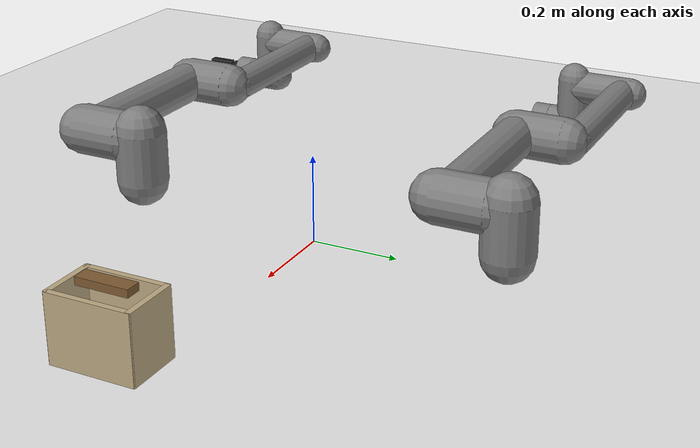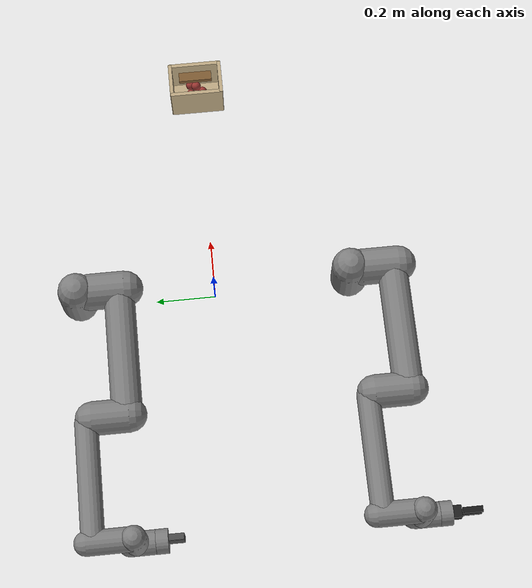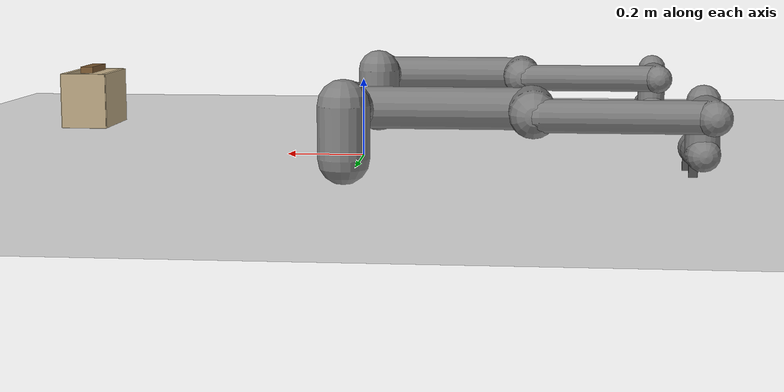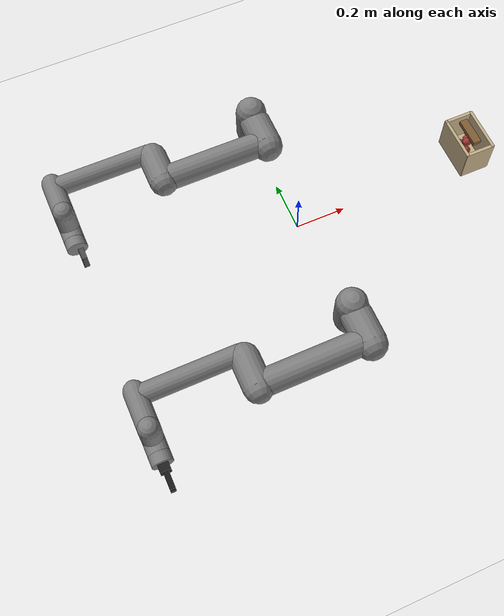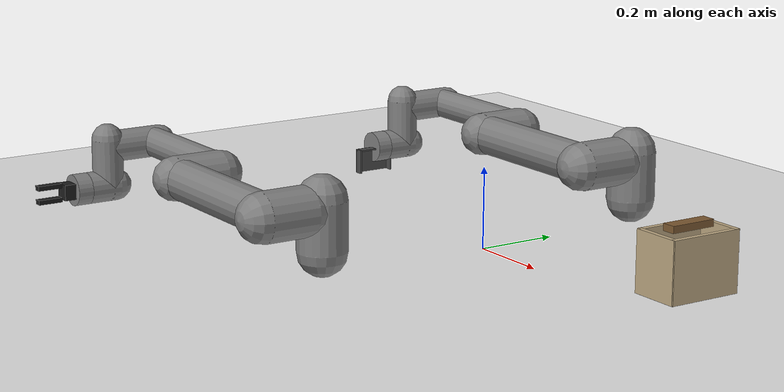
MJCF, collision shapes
<mujoco model="dual_ur5e_2f_scoop_sack_0330"><compiler angle="degree" meshdir="D:\Michael\2025\01.Research\01.Parceldetection\16.Pybullet\mujoco_menagerie\universal_robots_ur5e\assets" autolimits="true" inertiafromgeom="true" /><option integrator="implicitfast" timestep="0.002" gravity="0 0 -9.81" /><size memory="256M" nconmax="4000" /><statistic center="0.45 0 0.45" extent="1.4" /><visual><headlight diffuse="0.6 0.6 0.6" ambient="0.1 0.1 0.1" specular="0 0 0" /><rgba haze="0.15 0.25 0.35 1" /><global azimuth="120" elevation="-20" /></visual><asset><material class="ur5e" name="black" rgba="0.033 0.033 0.033 1" />
    <material class="ur5e" name="jointgray" rgba="0.278 0.278 0.278 1" />
    <material class="ur5e" name="linkgray" rgba="0.82 0.82 0.82 1" />
    <material class="ur5e" name="urblue" rgba="0.49 0.678 0.8 1" />

    <mesh file="base_0.obj" />
    <mesh file="base_1.obj" />
    <mesh file="shoulder_0.obj" />
    <mesh file="shoulder_1.obj" />
    <mesh file="shoulder_2.obj" />
    <mesh file="upperarm_0.obj" />
    <mesh file="upperarm_1.obj" />
    <mesh file="upperarm_2.obj" />
    <mesh file="upperarm_3.obj" />
    <mesh file="forearm_0.obj" />
    <mesh file="forearm_1.obj" />
    <mesh file="forearm_2.obj" />
    <mesh file="forearm_3.obj" />
    <mesh file="wrist1_0.obj" />
    <mesh file="wrist1_1.obj" />
    <mesh file="wrist1_2.obj" />
    <mesh file="wrist2_0.obj" />
    <mesh file="wrist2_1.obj" />
    <mesh file="wrist2_2.obj" />
    <mesh file="wrist3.obj" />
  <mesh name="sack9_obj" file="D:\Michael\2025\01.Research\01.Parceldetection\16.Pybullet\bullet3-master (1)\bullet3-master\examples\pybullet\examples\DeformableTest\Sackcodex2\object\sack9.obj" scale="0.070 0.070 0.070" /></asset><default>
    <default class="ur5e">
      <material specular="0.5" shininess="0.25" />
      <joint axis="0 1 0" range="-360.000269 360.000269" armature="0.1" />
      <general gaintype="fixed" biastype="affine" ctrlrange="-359.995112 359.995112" gainprm="2000" biasprm="0 -2000 -400" forcerange="-150 150" />
      <default class="size3">
        <default class="size3_limited">
          <joint range="-179.994691 179.994691" />
          <general ctrlrange="-179.994691 179.994691" />
        </default>
      </default>
      <default class="size1">
        <general gainprm="500" biasprm="0 -500 -100" forcerange="-28 28" />
      </default>
      <default class="visual">
        <geom type="mesh" contype="0" conaffinity="0" group="2" />
      </default>
      <default class="collision">
        <geom type="capsule" group="3" />
        <default class="eef_collision">
          <geom type="cylinder" />
        </default>
      </default>
      <site size="0.001" rgba="0.5 0.5 0.5 0.3" group="4" />
    </default>
  </default>

  <worldbody><light name="main_light" pos="0 0 1.8" dir="0 0 -1" directional="true" /><geom name="floor" type="plane" size="0 0 0.05" rgba="0.92 0.92 0.92 1" /><camera name="overview" pos="1.7 0 1.0" xyaxes="0 1 0 -0.40 0 0.92" /><body name="left_base" quat="0 0 0 -1" childclass="ur5e" pos="0.000000 -0.450000 0.000000">
      <inertial mass="4.0" pos="0 0 0" diaginertia="0.00443333156 0.00443333156 0.0072" />
      <geom mesh="base_0" material="black" class="visual" />
      <geom mesh="base_1" material="jointgray" class="visual" />
      <body name="left_shoulder_link" pos="0 0 0.163">
        <inertial mass="3.7" pos="0 0 0" diaginertia="0.0102675 0.0102675 0.00666" />
        <joint name="left_shoulder_pan_joint" class="size3" axis="0 0 1" />
        <geom mesh="shoulder_0" material="urblue" class="visual" />
        <geom mesh="shoulder_1" material="black" class="visual" />
        <geom mesh="shoulder_2" material="jointgray" class="visual" />
        <geom class="collision" size="0.06 0.06" pos="0 0 -0.04" />
        <body name="left_upper_arm_link" pos="0 0.138 0" quat="1 0 1 0">
          <inertial mass="8.393" pos="0 0 0.2125" diaginertia="0.133886 0.133886 0.0151074" />
          <joint name="left_shoulder_lift_joint" class="size3" />
          <geom mesh="upperarm_0" material="linkgray" class="visual" />
          <geom mesh="upperarm_1" material="black" class="visual" />
          <geom mesh="upperarm_2" material="jointgray" class="visual" />
          <geom mesh="upperarm_3" material="urblue" class="visual" />
          <geom class="collision" pos="0 -0.04 0" quat="1 1 0 0" size="0.06 0.06" />
          <geom class="collision" size="0.05 0.2" pos="0 0 0.2" />
          <body name="left_forearm_link" pos="0 -0.131 0.425">
            <inertial mass="2.275" pos="0 0 0.196" diaginertia="0.0311796 0.0311796 0.004095" />
            <joint name="left_elbow_joint" class="size3_limited" />
            <geom mesh="forearm_0" material="urblue" class="visual" />
            <geom mesh="forearm_1" material="linkgray" class="visual" />
            <geom mesh="forearm_2" material="black" class="visual" />
            <geom mesh="forearm_3" material="jointgray" class="visual" />
            <geom class="collision" pos="0 0.08 0" quat="1 1 0 0" size="0.055 0.06" />
            <geom class="collision" size="0.038 0.19" pos="0 0 0.2" />
            <body name="left_wrist_1_link" pos="0 0 0.392" quat="1 0 1 0">
              <inertial mass="1.219" pos="0 0.127 0" diaginertia="0.0025599 0.0025599 0.0021942" />
              <joint name="left_wrist_1_joint" class="size1" />
              <geom mesh="wrist1_0" material="black" class="visual" />
              <geom mesh="wrist1_1" material="urblue" class="visual" />
              <geom mesh="wrist1_2" material="jointgray" class="visual" />
              <geom class="collision" pos="0 0.05 0" quat="1 1 0 0" size="0.04 0.07" />
              <body name="left_wrist_2_link" pos="0 0.127 0">
                <inertial mass="1.219" pos="0 0 0.1" diaginertia="0.0025599 0.0025599 0.0021942" />
                <joint name="left_wrist_2_joint" axis="0 0 1" class="size1" />
                <geom mesh="wrist2_0" material="black" class="visual" />
                <geom mesh="wrist2_1" material="urblue" class="visual" />
                <geom mesh="wrist2_2" material="jointgray" class="visual" />
                <geom class="collision" size="0.04 0.06" pos="0 0 0.04" />
                <geom class="collision" pos="0 0.02 0.1" quat="1 1 0 0" size="0.04 0.04" />
                <body name="left_wrist_3_link" pos="0 0 0.1">
                  <inertial mass="0.1889" pos="0 0.0771683 0" quat="1 0 0 1" diaginertia="0.000132134 9.90863e-05 9.90863e-05" />
                  <joint name="left_wrist_3_joint" class="size1" />
                  <geom material="linkgray" mesh="wrist3" class="visual" />
                  <geom class="eef_collision" pos="0 0.08 0" quat="1 1 0 0" size="0.04 0.02" />
                  <site name="left_attachment_site" pos="0 0.1 0" quat="-1 1 0 0" />
                <body name="left_gripper_base" pos="0 0.10 0" quat="-1 1 0 0">
          <geom type="box" size="0.020 0.020 0.030" rgba="0.12 0.12 0.12 1" />
          <body name="left_finger_l_body" pos="0 0 0.065">
            <joint name="left_finger_l" type="slide" axis="0 1 0" limited="true" range="0.012 0.040" damping="8" />
            <geom type="box" pos="0 0.018 0" size="0.010 0.006 0.032" rgba="0.10 0.10 0.10 1" friction="2.0 0.05 0.01" />
          </body>
          <body name="left_finger_r_body" pos="0 0 0.065">
            <joint name="left_finger_r" type="slide" axis="0 -1 0" limited="true" range="0.012 0.040" damping="8" />
            <geom type="box" pos="0 -0.018 0" size="0.010 0.006 0.032" rgba="0.10 0.10 0.10 1" friction="2.0 0.05 0.01" />
          </body>
          <site name="left_gripper_pinch" pos="0 0 0.065" size="0.006" rgba="1 0 0 1" />
        </body></body>
              </body>
            </body>
          </body>
        </body>
      </body>
    </body>
  <body name="right_base" quat="0 0 0 -1" childclass="ur5e" pos="0.000000 0.450000 0.000000">
      <inertial mass="4.0" pos="0 0 0" diaginertia="0.00443333156 0.00443333156 0.0072" />
      <geom mesh="base_0" material="black" class="visual" />
      <geom mesh="base_1" material="jointgray" class="visual" />
      <body name="right_shoulder_link" pos="0 0 0.163">
        <inertial mass="3.7" pos="0 0 0" diaginertia="0.0102675 0.0102675 0.00666" />
        <joint name="right_shoulder_pan_joint" class="size3" axis="0 0 1" />
        <geom mesh="shoulder_0" material="urblue" class="visual" />
        <geom mesh="shoulder_1" material="black" class="visual" />
        <geom mesh="shoulder_2" material="jointgray" class="visual" />
        <geom class="collision" size="0.06 0.06" pos="0 0 -0.04" />
        <body name="right_upper_arm_link" pos="0 0.138 0" quat="1 0 1 0">
          <inertial mass="8.393" pos="0 0 0.2125" diaginertia="0.133886 0.133886 0.0151074" />
          <joint name="right_shoulder_lift_joint" class="size3" />
          <geom mesh="upperarm_0" material="linkgray" class="visual" />
          <geom mesh="upperarm_1" material="black" class="visual" />
          <geom mesh="upperarm_2" material="jointgray" class="visual" />
          <geom mesh="upperarm_3" material="urblue" class="visual" />
          <geom class="collision" pos="0 -0.04 0" quat="1 1 0 0" size="0.06 0.06" />
          <geom class="collision" size="0.05 0.2" pos="0 0 0.2" />
          <body name="right_forearm_link" pos="0 -0.131 0.425">
            <inertial mass="2.275" pos="0 0 0.196" diaginertia="0.0311796 0.0311796 0.004095" />
            <joint name="right_elbow_joint" class="size3_limited" />
            <geom mesh="forearm_0" material="urblue" class="visual" />
            <geom mesh="forearm_1" material="linkgray" class="visual" />
            <geom mesh="forearm_2" material="black" class="visual" />
            <geom mesh="forearm_3" material="jointgray" class="visual" />
            <geom class="collision" pos="0 0.08 0" quat="1 1 0 0" size="0.055 0.06" />
            <geom class="collision" size="0.038 0.19" pos="0 0 0.2" />
            <body name="right_wrist_1_link" pos="0 0 0.392" quat="1 0 1 0">
              <inertial mass="1.219" pos="0 0.127 0" diaginertia="0.0025599 0.0025599 0.0021942" />
              <joint name="right_wrist_1_joint" class="size1" />
              <geom mesh="wrist1_0" material="black" class="visual" />
              <geom mesh="wrist1_1" material="urblue" class="visual" />
              <geom mesh="wrist1_2" material="jointgray" class="visual" />
              <geom class="collision" pos="0 0.05 0" quat="1 1 0 0" size="0.04 0.07" />
              <body name="right_wrist_2_link" pos="0 0.127 0">
                <inertial mass="1.219" pos="0 0 0.1" diaginertia="0.0025599 0.0025599 0.0021942" />
                <joint name="right_wrist_2_joint" axis="0 0 1" class="size1" />
                <geom mesh="wrist2_0" material="black" class="visual" />
                <geom mesh="wrist2_1" material="urblue" class="visual" />
                <geom mesh="wrist2_2" material="jointgray" class="visual" />
                <geom class="collision" size="0.04 0.06" pos="0 0 0.04" />
                <geom class="collision" pos="0 0.02 0.1" quat="1 1 0 0" size="0.04 0.04" />
                <body name="right_wrist_3_link" pos="0 0 0.1">
                  <inertial mass="0.1889" pos="0 0.0771683 0" quat="1 0 0 1" diaginertia="0.000132134 9.90863e-05 9.90863e-05" />
                  <joint name="right_wrist_3_joint" class="size1" />
                  <geom material="linkgray" mesh="wrist3" class="visual" />
                  <geom class="eef_collision" pos="0 0.08 0" quat="1 1 0 0" size="0.04 0.02" />
                  <site name="right_attachment_site" pos="0 0.1 0" quat="-1 1 0 0" />
                <body name="right_scoop_tool" pos="0 0.10 0.05" euler="-90 90 0">
          <geom type="box" pos="0 -0.020 0" size="0.050 0.070 0.001" mass="0.04" rgba="0.30 0.30 0.30 1" friction="1.6 0.05 0.01" />
          <geom type="box" pos="0.048 -0.020 0.011" size="0.002 0.070 0.010" mass="0.015" rgba="0.30 0.30 0.30 1" friction="1.6 0.05 0.01" />
          <geom type="box" pos="-0.048 -0.020 0.011" size="0.002 0.070 0.010" mass="0.015" rgba="0.30 0.30 0.30 1" friction="1.6 0.05 0.01" />
          <geom type="box" pos="0 0.048 0.011" size="0.050 0.002 0.010" mass="0.012" rgba="0.30 0.30 0.30 1" friction="1.6 0.05 0.01" />
          <geom type="box" pos="0 -0.1005 -0.001" euler="0.35 0 0" size="0.050 0.0105 0.001" mass="0.006" rgba="0.30 0.30 0.30 1" friction="1.6 0.05 0.01" />
          <site name="right_scoop_site" pos="0 -0.090 0.006" size="0.006" rgba="0 0 1 1" />
        </body></body>
              </body>
            </body>
          </body>
        </body>
      </body>
    </body>
  <body name="band" pos="0.720000 0.000000 0.223000">
          <freejoint name="band_free" />
          <geom name="grasp_band" type="box" size="0.016000 0.055000 0.008000" mass="0.10" rgba="0.50 0.36 0.20 1" friction="2.0 0.05 0.01" />
          <site name="handle_grasp_site" pos="0 0 0" size="0.008" rgba="1 0 0 1" />
        </body><body name="sack" pos="0.720000 0.000000 0.135000">
          <freejoint name="sack_free" />
          <geom name="sack_visual" type="mesh" mesh="sack9_obj" rgba="0.90 0.85 0.70 0.52" contype="0" conaffinity="0" />
          <geom name="sack_bottom" type="box" pos="0 0 -0.055" size="0.058 0.088 0.006" mass="0.16" rgba="0.75 0.67 0.52 0.35" friction="1.3 0.05 0.01" />
          <body name="sack_wall_l_body" pos="0 0.084 0.010">
            <joint name="sack_wall_l_slide" type="slide" axis="0 -1 0" limited="true" range="-0.018 0.010" damping="18" stiffness="900" armature="0.003" />
            <geom name="sack_wall_l" type="box" pos="0 0 0" size="0.058 0.006 0.070" mass="0.05" rgba="0.75 0.67 0.52 0.28" friction="1.3 0.05 0.01" />
          </body>
          <body name="sack_wall_r_body" pos="0 -0.084 0.010">
            <joint name="sack_wall_r_slide" type="slide" axis="0 1 0" limited="true" range="-0.018 0.010" damping="18" stiffness="900" armature="0.003" />
            <geom name="sack_wall_r" type="box" pos="0 0 0" size="0.058 0.006 0.070" mass="0.05" rgba="0.75 0.67 0.52 0.28" friction="1.3 0.05 0.01" />
          </body>
          <body name="sack_wall_f_body" pos="0.054 0 0.010">
            <joint name="sack_wall_f_slide" type="slide" axis="-1 0 0" limited="true" range="-0.015 0.010" damping="18" stiffness="900" armature="0.003" />
            <geom name="sack_wall_f" type="box" pos="0 0 0" size="0.006 0.088 0.070" mass="0.05" rgba="0.75 0.67 0.52 0.28" friction="1.3 0.05 0.01" />
          </body>
          <body name="sack_wall_b_body" pos="-0.054 0 0.010">
            <joint name="sack_wall_b_slide" type="slide" axis="1 0 0" limited="true" range="-0.015 0.010" damping="18" stiffness="900" armature="0.003" />
            <geom name="sack_wall_b" type="box" pos="0 0 0" size="0.006 0.088 0.070" mass="0.05" rgba="0.75 0.67 0.52 0.28" friction="1.3 0.05 0.01" />
          </body>
          <site name="sack_com_site" pos="0 0 0.01" size="0.006" rgba="0 1 0 1" />

      <body name="payload0" pos="-0.0100 -0.0200 0.0000">
        <joint name="payload0_x" type="slide" axis="1 0 0" limited="true" range="-0.025 0.025" damping="14" />
        <joint name="payload0_y" type="slide" axis="0 1 0" limited="true" range="-0.040 0.040" damping="14" />
        <joint name="payload0_z" type="slide" axis="0 0 1" limited="true" range="-0.015 0.050" damping="16" />
        <geom type="sphere" size="0.016" mass="0.90" rgba="0.62 0.22 0.20 1" contype="0" conaffinity="0" />
      </body>

      <body name="payload1" pos="0.0120 0.0180 0.0100">
        <joint name="payload1_x" type="slide" axis="1 0 0" limited="true" range="-0.025 0.025" damping="14" />
        <joint name="payload1_y" type="slide" axis="0 1 0" limited="true" range="-0.040 0.040" damping="14" />
        <joint name="payload1_z" type="slide" axis="0 0 1" limited="true" range="-0.015 0.050" damping="16" />
        <geom type="sphere" size="0.016" mass="0.90" rgba="0.62 0.22 0.20 1" contype="0" conaffinity="0" />
      </body>

      <body name="payload2" pos="0.0000 0.0000 0.0220">
        <joint name="payload2_x" type="slide" axis="1 0 0" limited="true" range="-0.025 0.025" damping="14" />
        <joint name="payload2_y" type="slide" axis="0 1 0" limited="true" range="-0.040 0.040" damping="14" />
        <joint name="payload2_z" type="slide" axis="0 0 1" limited="true" range="-0.015 0.050" damping="16" />
        <geom type="sphere" size="0.016" mass="0.90" rgba="0.62 0.22 0.20 1" contype="0" conaffinity="0" />
      </body>

      <body name="payload3" pos="-0.0150 0.0200 -0.0050">
        <joint name="payload3_x" type="slide" axis="1 0 0" limited="true" range="-0.025 0.025" damping="14" />
        <joint name="payload3_y" type="slide" axis="0 1 0" limited="true" range="-0.040 0.040" damping="14" />
        <joint name="payload3_z" type="slide" axis="0 0 1" limited="true" range="-0.015 0.050" damping="16" />
        <geom type="sphere" size="0.016" mass="0.90" rgba="0.62 0.22 0.20 1" contype="0" conaffinity="0" />
      </body>
        </body></worldbody><equality><connect body1="band" body2="sack" anchor="0.732000 0.045000 0.215000" solref="0.030 1" solimp="0.88 0.96 0.004" /><connect body1="band" body2="sack" anchor="0.732000 -0.045000 0.215000" solref="0.030 1" solimp="0.88 0.96 0.004" /><connect body1="band" body2="sack" anchor="0.708000 0.045000 0.215000" solref="0.030 1" solimp="0.88 0.96 0.004" /><connect body1="band" body2="sack" anchor="0.708000 -0.045000 0.215000" solref="0.030 1" solimp="0.88 0.96 0.004" /></equality><actuator><general class="size3" name="left_shoulder_pan" joint="left_shoulder_pan_joint" />
    <general class="size3" name="left_shoulder_lift" joint="left_shoulder_lift_joint" />
    <general class="size3_limited" name="left_elbow" joint="left_elbow_joint" />
    <general class="size1" name="left_wrist_1" joint="left_wrist_1_joint" />
    <general class="size1" name="left_wrist_2" joint="left_wrist_2_joint" />
    <general class="size1" name="left_wrist_3" joint="left_wrist_3_joint" />
  <general class="size3" name="right_shoulder_pan" joint="right_shoulder_pan_joint" />
    <general class="size3" name="right_shoulder_lift" joint="right_shoulder_lift_joint" />
    <general class="size3_limited" name="right_elbow" joint="right_elbow_joint" />
    <general class="size1" name="right_wrist_1" joint="right_wrist_1_joint" />
    <general class="size1" name="right_wrist_2" joint="right_wrist_2_joint" />
    <general class="size1" name="right_wrist_3" joint="right_wrist_3_joint" />
  <position name="left_finger_l_act" joint="left_finger_l" ctrlrange="0.012 0.040" kp="1800" forcerange="-200 200" /><position name="left_finger_r_act" joint="left_finger_r" ctrlrange="0.012 0.040" kp="1800" forcerange="-200 200" /></actuator></mujoco>
